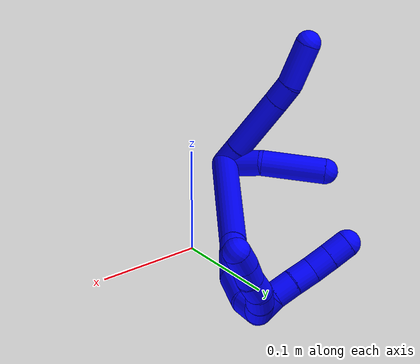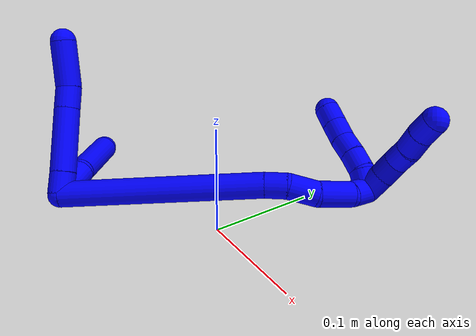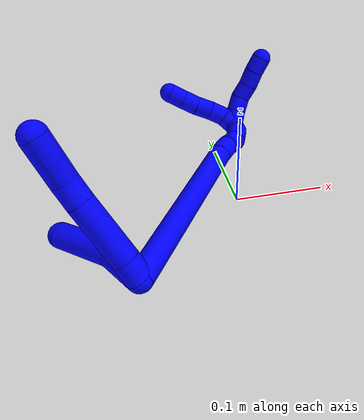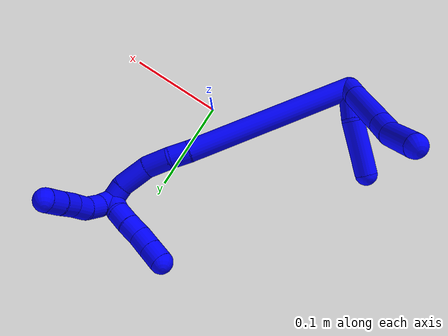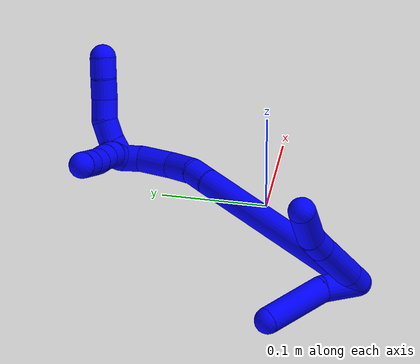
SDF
<sdf version="1.7">
 <world name="default">
  <model name="photoneo_s_sensor">
   <static>1</static>
   <pose>0 0 2 1.57079 1.57079 3.14159</pose>
   <link name="link">
    <inertial><mass>0.1</mass></inertial>
    <sensor name="sensor" type="depth">
     <update_rate>30</update_rate>
     <camera>
      <horizontal_fov>1.22</horizontal_fov>
      <image><width>1920</width><height>1200</height><format>B8G8R8</format></image>
      <clip><near>0.1</near><far>4</far></clip>
      <depth_camera><output>points</output></depth_camera>
     </camera>
     <plugin name="camera_plugin" filename="libgazebo_ros_depth_camera.so">
      <baseline>0.2</baseline>
      <alwaysOn>1</alwaysOn>
      <updateRate>0.0</updateRate>
      <cameraName>camera_ir</cameraName>
      <imageTopicName>/camera/color/image_raw</imageTopicName>
      <cameraInfoTopicName>/camera/color/camera_info</cameraInfoTopicName>
      <depthImageTopicName>/camera/depth/image_raw</depthImageTopicName>
      <depthImageCameraInfoTopicName>/camera/depth/camera_info</depthImageCameraInfoTopicName>
      <pointCloudTopicName>/camera/depth/points</pointCloudTopicName>
      <frameName>fr_optical</frameName>
      <pointCloudCutoff>0.1</pointCloudCutoff>
      <pointCloudCutoffMax>2.0</pointCloudCutoffMax>
      <distortionK1>0</distortionK1>
      <distortionK2>0</distortionK2>
      <distortionK3>0</distortionK3>
      <distortionT1>0</distortionT1>
      <distortionT2>0</distortionT2>
      <CxPrime>0</CxPrime>
      <Cx>0</Cx>
      <Cy>0</Cy>
      <focalLength>0</focalLength>
      <hackBaseline>0</hackBaseline>
     </plugin>
    </sensor>
   </link>
  </model>
  <model name="bin">
   <static>1</static>
   <link name="bottom">
    <collision name="collision-bottom">
     <pose>0 0 -0.01 0 -0 0</pose>
     <geometry><box><size>0.8 0.6 0.02</size></box></geometry>
     <surface>
      <friction><ode><mu>100</mu><mu2>100</mu2></ode></friction>
      <contact><collide_bitmask>65535</collide_bitmask></contact>
     </surface>
    </collision>
   </link>
   <link name="west_wall">
    <collision name="collision-west_wall">
     <pose>-0.41 0 0.1 0 -0 0</pose>
     <geometry><box><size>0.02 0.6 0.2</size></box></geometry>
     <surface>
      <friction><ode><mu>100</mu><mu2>100</mu2></ode></friction>
      <contact><collide_bitmask>65535</collide_bitmask></contact>
     </surface>
    </collision>
   </link>
   <link name="east_wall">
    <collision name="collision-east_wall">
     <pose>0.41 0 0.1 0 -0 0</pose>
     <geometry><box><size>0.02 0.6 0.2</size></box></geometry>
     <surface>
      <friction><ode><mu>100</mu><mu2>100</mu2></ode></friction>
      <contact><collide_bitmask>65535</collide_bitmask></contact>
     </surface>
    </collision>
   </link>
   <link name="south_wall">
    <collision name="collision-south_wall">
     <pose>0 -0.31 0.1 0 -0 0</pose>
     <geometry><box><size>0.8 0.02 0.2</size></box></geometry>
     <surface>
      <friction><ode><mu>100</mu><mu2>100</mu2></ode></friction>
      <contact><collide_bitmask>65535</collide_bitmask></contact>
     </surface>
    </collision>
   </link>
   <link name="north_wall">
    <collision name="collision-north_wall">
     <pose>0 0.31 0.1 0 -0 0</pose>
     <geometry><box><size>0.8 0.02 0.2</size></box></geometry>
     <surface>
      <friction><ode><mu>100</mu><mu2>100</mu2></ode></friction>
      <contact><collide_bitmask>65535</collide_bitmask></contact>
     </surface>
    </collision>
   </link>
  </model>
  <model name="1">
   <static>0</static>
   <link name="1">
    <collision name="collision-cylinder-e_1_2_8">
     <pose>0.00047 -0.00067 0.010493 0.063764 0.044712 0.001426</pose>
     <geometry><cylinder><radius>0.0125</radius><length>0.021049</length></cylinder></geometry>
     <surface>
      <friction><ode><mu>1.16</mu><mu2>1.16</mu2><slip1>0</slip1><slip2>0</slip2></ode></friction>
      <contact><ode><kp>1e+06</kp><kd>1</kd><max_vel>0</max_vel><min_depth>0.001</min_depth></ode></contact>
     </surface>
    </collision>
    <visual name="visual-cylinder-e_1_2_8">
     <pose>0.00047 -0.00067 0.010493 0.063764 0.044712 0.001426</pose>
     <geometry><cylinder><radius>0.0125</radius><length>0.021049</length></cylinder></geometry>
     <material><ambient>0 0 1 1</ambient></material>
    </visual>
    <collision name="collision-cylinder-e_2_8_9">
     <pose>0.001425 -0.004283 0.051837 0.095112 0.015618 0.000743</pose>
     <geometry><cylinder><radius>0.0125</radius><length>0.061991</length></cylinder></geometry>
     <surface>
      <friction><ode><mu>1.16</mu><mu2>1.16</mu2><slip1>0</slip1><slip2>0</slip2></ode></friction>
      <contact><ode><kp>1e+06</kp><kd>1</kd><max_vel>0</max_vel><min_depth>0.001</min_depth></ode></contact>
     </surface>
    </collision>
    <visual name="visual-cylinder-e_2_8_9">
     <pose>0.001425 -0.004283 0.051837 0.095112 0.015618 0.000743</pose>
     <geometry><cylinder><radius>0.0125</radius><length>0.061991</length></cylinder></geometry>
     <material><ambient>0 0 1 1</ambient></material>
    </visual>
    <collision name="collision-cylinder-e_3_9_10">
     <pose>0.002473 -0.008212 0.093666 0.089525 0.051112 0.00229</pose>
     <geometry><cylinder><radius>0.0125</radius><length>0.022071</length></cylinder></geometry>
     <surface>
      <friction><ode><mu>1.16</mu><mu2>1.16</mu2><slip1>0</slip1><slip2>0</slip2></ode></friction>
      <contact><ode><kp>1e+06</kp><kd>1</kd><max_vel>0</max_vel><min_depth>0.001</min_depth></ode></contact>
     </surface>
    </collision>
    <visual name="visual-cylinder-e_3_9_10">
     <pose>0.002473 -0.008212 0.093666 0.089525 0.051112 0.00229</pose>
     <geometry><cylinder><radius>0.0125</radius><length>0.022071</length></cylinder></geometry>
     <material><ambient>0 0 1 1</ambient></material>
    </visual>
    <collision name="collision-cylinder-e_4_10_6">
     <pose>0.007057 -0.015916 0.125677 0.309169 0.180088 0.028137</pose>
     <geometry><cylinder><radius>0.0125</radius><length>0.044888</length></cylinder></geometry>
     <surface>
      <friction><ode><mu>1.16</mu><mu2>1.16</mu2><slip1>0</slip1><slip2>0</slip2></ode></friction>
      <contact><ode><kp>1e+06</kp><kd>1</kd><max_vel>0</max_vel><min_depth>0.001</min_depth></ode></contact>
     </surface>
    </collision>
    <visual name="visual-cylinder-e_4_10_6">
     <pose>0.007057 -0.015916 0.125677 0.309169 0.180088 0.028137</pose>
     <geometry><cylinder><radius>0.0125</radius><length>0.044888</length></cylinder></geometry>
     <material><ambient>0 0 1 1</ambient></material>
    </visual>
    <collision name="collision-cylinder-e_1_2_11">
     <pose>-0.008007 0.009609 0.014091 -0.598494 -0.438928 0.137414</pose>
     <geometry><cylinder><radius>0.0125</radius><length>0.037683</length></cylinder></geometry>
     <surface>
      <friction><ode><mu>1.16</mu><mu2>1.16</mu2><slip1>0</slip1><slip2>0</slip2></ode></friction>
      <contact><ode><kp>1e+06</kp><kd>1</kd><max_vel>0</max_vel><min_depth>0.001</min_depth></ode></contact>
     </surface>
    </collision>
    <visual name="visual-cylinder-e_1_2_11">
     <pose>-0.008007 0.009609 0.014091 -0.598494 -0.438928 0.137414</pose>
     <geometry><cylinder><radius>0.0125</radius><length>0.037683</length></cylinder></geometry>
     <material><ambient>0 0 1 1</ambient></material>
    </visual>
    <collision name="collision-cylinder-e_2_11_5">
     <pose>-0.037212 0.033475 0.046021 -0.674278 -0.748207 0.273505</pose>
     <geometry><cylinder><radius>0.0125</radius><length>0.062317</length></cylinder></geometry>
     <surface>
      <friction><ode><mu>1.16</mu><mu2>1.16</mu2><slip1>0</slip1><slip2>0</slip2></ode></friction>
      <contact><ode><kp>1e+06</kp><kd>1</kd><max_vel>0</max_vel><min_depth>0.001</min_depth></ode></contact>
     </surface>
    </collision>
    <visual name="visual-cylinder-e_2_11_5">
     <pose>-0.037212 0.033475 0.046021 -0.674278 -0.748207 0.273505</pose>
     <geometry><cylinder><radius>0.0125</radius><length>0.062317</length></cylinder></geometry>
     <material><ambient>0 0 1 1</ambient></material>
    </visual>
    <collision name="collision-cylinder-e_1_2_12">
     <pose>0.0486 0.082933 0.012314 -1.42339 0.525328 -0.455747</pose>
     <geometry><cylinder><radius>0.0125</radius><length>0.193818</length></cylinder></geometry>
     <surface>
      <friction><ode><mu>1.16</mu><mu2>1.16</mu2><slip1>0</slip1><slip2>0</slip2></ode></friction>
      <contact><ode><kp>1e+06</kp><kd>1</kd><max_vel>0</max_vel><min_depth>0.001</min_depth></ode></contact>
     </surface>
    </collision>
    <visual name="visual-cylinder-e_1_2_12">
     <pose>0.0486 0.082933 0.012314 -1.42339 0.525328 -0.455747</pose>
     <geometry><cylinder><radius>0.0125</radius><length>0.193818</length></cylinder></geometry>
     <material><ambient>0 0 1 1</ambient></material>
    </visual>
    <collision name="collision-cylinder-e_2_12_13">
     <pose>0.102754 0.175145 0.02505 -1.52529 0.538916 -0.516005</pose>
     <geometry><cylinder><radius>0.0125</radius><length>0.021647</length></cylinder></geometry>
     <surface>
      <friction><ode><mu>1.16</mu><mu2>1.16</mu2><slip1>0</slip1><slip2>0</slip2></ode></friction>
      <contact><ode><kp>1e+06</kp><kd>1</kd><max_vel>0</max_vel><min_depth>0.001</min_depth></ode></contact>
     </surface>
    </collision>
    <visual name="visual-cylinder-e_2_12_13">
     <pose>0.102754 0.175145 0.02505 -1.52529 0.538916 -0.516005</pose>
     <geometry><cylinder><radius>0.0125</radius><length>0.021647</length></cylinder></geometry>
     <material><ambient>0 0 1 1</ambient></material>
    </visual>
    <collision name="collision-cylinder-e_3_13_14">
     <pose>0.112834 0.198164 0.023356 -1.72365 0.314712 -0.365831</pose>
     <geometry><cylinder><radius>0.0125</radius><length>0.029239</length></cylinder></geometry>
     <surface>
      <friction><ode><mu>1.16</mu><mu2>1.16</mu2><slip1>0</slip1><slip2>0</slip2></ode></friction>
      <contact><ode><kp>1e+06</kp><kd>1</kd><max_vel>0</max_vel><min_depth>0.001</min_depth></ode></contact>
     </surface>
    </collision>
    <visual name="visual-cylinder-e_3_13_14">
     <pose>0.112834 0.198164 0.023356 -1.72365 0.314712 -0.365831</pose>
     <geometry><cylinder><radius>0.0125</radius><length>0.029239</length></cylinder></geometry>
     <material><ambient>0 0 1 1</ambient></material>
    </visual>
    <collision name="collision-cylinder-e_4_14_15">
     <pose>0.120871 0.228836 0.023358 -1.44631 0.202968 -0.179288</pose>
     <geometry><cylinder><radius>0.0125</radius><length>0.034844</length></cylinder></geometry>
     <surface>
      <friction><ode><mu>1.16</mu><mu2>1.16</mu2><slip1>0</slip1><slip2>0</slip2></ode></friction>
      <contact><ode><kp>1e+06</kp><kd>1</kd><max_vel>0</max_vel><min_depth>0.001</min_depth></ode></contact>
     </surface>
    </collision>
    <visual name="visual-cylinder-e_4_14_15">
     <pose>0.120871 0.228836 0.023358 -1.44631 0.202968 -0.179288</pose>
     <geometry><cylinder><radius>0.0125</radius><length>0.034844</length></cylinder></geometry>
     <material><ambient>0 0 1 1</ambient></material>
    </visual>
    <collision name="collision-cylinder-e_5_15_1">
     <pose>0.12392 0.255355 0.029006 -1.2181 -0.045261 0.031572</pose>
     <geometry><cylinder><radius>0.0125</radius><length>0.020452</length></cylinder></geometry>
     <surface>
      <friction><ode><mu>1.16</mu><mu2>1.16</mu2><slip1>0</slip1><slip2>0</slip2></ode></friction>
      <contact><ode><kp>1e+06</kp><kd>1</kd><max_vel>0</max_vel><min_depth>0.001</min_depth></ode></contact>
     </surface>
    </collision>
    <visual name="visual-cylinder-e_5_15_1">
     <pose>0.12392 0.255355 0.029006 -1.2181 -0.045261 0.031572</pose>
     <geometry><cylinder><radius>0.0125</radius><length>0.020452</length></cylinder></geometry>
     <material><ambient>0 0 1 1</ambient></material>
    </visual>
    <collision name="collision-cylinder-e_1_1_16">
     <pose>0.130369 0.267822 0.039163 -0.409924 0.763035 -0.166408</pose>
     <geometry><cylinder><radius>0.0125</radius><length>0.02</length></cylinder></geometry>
     <surface>
      <friction><ode><mu>1.16</mu><mu2>1.16</mu2><slip1>0</slip1><slip2>0</slip2></ode></friction>
      <contact><ode><kp>1e+06</kp><kd>1</kd><max_vel>0</max_vel><min_depth>0.001</min_depth></ode></contact>
     </surface>
    </collision>
    <visual name="visual-cylinder-e_1_1_16">
     <pose>0.130369 0.267822 0.039163 -0.409924 0.763035 -0.166408</pose>
     <geometry><cylinder><radius>0.0125</radius><length>0.02</length></cylinder></geometry>
     <material><ambient>0 0 1 1</ambient></material>
    </visual>
    <collision name="collision-cylinder-e_2_16_17">
     <pose>0.145018 0.272129 0.051964 -0.22718 0.884741 -0.107971</pose>
     <geometry><cylinder><radius>0.0125</radius><length>0.02</length></cylinder></geometry>
     <surface>
      <friction><ode><mu>1.16</mu><mu2>1.16</mu2><slip1>0</slip1><slip2>0</slip2></ode></friction>
      <contact><ode><kp>1e+06</kp><kd>1</kd><max_vel>0</max_vel><min_depth>0.001</min_depth></ode></contact>
     </surface>
    </collision>
    <visual name="visual-cylinder-e_2_16_17">
     <pose>0.145018 0.272129 0.051964 -0.22718 0.884741 -0.107971</pose>
     <geometry><cylinder><radius>0.0125</radius><length>0.02</length></cylinder></geometry>
     <material><ambient>0 0 1 1</ambient></material>
    </visual>
    <collision name="collision-cylinder-e_3_17_18">
     <pose>0.161866 0.272839 0.062195 0.17479 1.14596 0.112939</pose>
     <geometry><cylinder><radius>0.0125</radius><length>0.02</length></cylinder></geometry>
     <surface>
      <friction><ode><mu>1.16</mu><mu2>1.16</mu2><slip1>0</slip1><slip2>0</slip2></ode></friction>
      <contact><ode><kp>1e+06</kp><kd>1</kd><max_vel>0</max_vel><min_depth>0.001</min_depth></ode></contact>
     </surface>
    </collision>
    <visual name="visual-cylinder-e_3_17_18">
     <pose>0.161866 0.272839 0.062195 0.17479 1.14596 0.112939</pose>
     <geometry><cylinder><radius>0.0125</radius><length>0.02</length></cylinder></geometry>
     <material><ambient>0 0 1 1</ambient></material>
    </visual>
    <collision name="collision-cylinder-e_4_18_19">
     <pose>0.179333 0.270951 0.071621 0.21488 0.989242 0.11621</pose>
     <geometry><cylinder><radius>0.0125</radius><length>0.02</length></cylinder></geometry>
     <surface>
      <friction><ode><mu>1.16</mu><mu2>1.16</mu2><slip1>0</slip1><slip2>0</slip2></ode></friction>
      <contact><ode><kp>1e+06</kp><kd>1</kd><max_vel>0</max_vel><min_depth>0.001</min_depth></ode></contact>
     </surface>
    </collision>
    <visual name="visual-cylinder-e_4_18_19">
     <pose>0.179333 0.270951 0.071621 0.21488 0.989242 0.11621</pose>
     <geometry><cylinder><radius>0.0125</radius><length>0.02</length></cylinder></geometry>
     <material><ambient>0 0 1 1</ambient></material>
    </visual>
    <collision name="collision-cylinder-e_5_19_4">
     <pose>0.196591 0.269099 0.081493 0.150063 1.09771 0.091876</pose>
     <geometry><cylinder><radius>0.0125</radius><length>0.02</length></cylinder></geometry>
     <surface>
      <friction><ode><mu>1.16</mu><mu2>1.16</mu2><slip1>0</slip1><slip2>0</slip2></ode></friction>
      <contact><ode><kp>1e+06</kp><kd>1</kd><max_vel>0</max_vel><min_depth>0.001</min_depth></ode></contact>
     </surface>
    </collision>
    <visual name="visual-cylinder-e_5_19_4">
     <pose>0.196591 0.269099 0.081493 0.150063 1.09771 0.091876</pose>
     <geometry><cylinder><radius>0.0125</radius><length>0.02</length></cylinder></geometry>
     <material><ambient>0 0 1 1</ambient></material>
    </visual>
    <collision name="collision-cylinder-e_1_1_20">
     <pose>0.121237 0.263014 0.042092 0.199026 -0.223901 -0.022448</pose>
     <geometry><cylinder><radius>0.0125</radius><length>0.02</length></cylinder></geometry>
     <surface>
      <friction><ode><mu>1.16</mu><mu2>1.16</mu2><slip1>0</slip1><slip2>0</slip2></ode></friction>
      <contact><ode><kp>1e+06</kp><kd>1</kd><max_vel>0</max_vel><min_depth>0.001</min_depth></ode></contact>
     </surface>
    </collision>
    <visual name="visual-cylinder-e_1_1_20">
     <pose>0.121237 0.263014 0.042092 0.199026 -0.223901 -0.022448</pose>
     <geometry><cylinder><radius>0.0125</radius><length>0.02</length></cylinder></geometry>
     <material><ambient>0 0 1 1</ambient></material>
    </visual>
    <collision name="collision-cylinder-e_2_20_21">
     <pose>0.114082 0.258961 0.060084 0.246843 -0.516158 -0.065467</pose>
     <geometry><cylinder><radius>0.0125</radius><length>0.02</length></cylinder></geometry>
     <surface>
      <friction><ode><mu>1.16</mu><mu2>1.16</mu2><slip1>0</slip1><slip2>0</slip2></ode></friction>
      <contact><ode><kp>1e+06</kp><kd>1</kd><max_vel>0</max_vel><min_depth>0.001</min_depth></ode></contact>
     </surface>
    </collision>
    <visual name="visual-cylinder-e_2_20_21">
     <pose>0.114082 0.258961 0.060084 0.246843 -0.516158 -0.065467</pose>
     <geometry><cylinder><radius>0.0125</radius><length>0.02</length></cylinder></geometry>
     <material><ambient>0 0 1 1</ambient></material>
    </visual>
    <collision name="collision-cylinder-e_3_21_22">
     <pose>0.103555 0.25452 0.076478 0.283044 -0.59332 -0.087048</pose>
     <geometry><cylinder><radius>0.0125</radius><length>0.02</length></cylinder></geometry>
     <surface>
      <friction><ode><mu>1.16</mu><mu2>1.16</mu2><slip1>0</slip1><slip2>0</slip2></ode></friction>
      <contact><ode><kp>1e+06</kp><kd>1</kd><max_vel>0</max_vel><min_depth>0.001</min_depth></ode></contact>
     </surface>
    </collision>
    <visual name="visual-cylinder-e_3_21_22">
     <pose>0.103555 0.25452 0.076478 0.283044 -0.59332 -0.087048</pose>
     <geometry><cylinder><radius>0.0125</radius><length>0.02</length></cylinder></geometry>
     <material><ambient>0 0 1 1</ambient></material>
    </visual>
    <collision name="collision-cylinder-e_4_22_23">
     <pose>0.093307 0.250122 0.09304 0.237594 -0.484448 -0.058964</pose>
     <geometry><cylinder><radius>0.0125</radius><length>0.02</length></cylinder></geometry>
     <surface>
      <friction><ode><mu>1.16</mu><mu2>1.16</mu2><slip1>0</slip1><slip2>0</slip2></ode></friction>
      <contact><ode><kp>1e+06</kp><kd>1</kd><max_vel>0</max_vel><min_depth>0.001</min_depth></ode></contact>
     </surface>
    </collision>
    <visual name="visual-cylinder-e_4_22_23">
     <pose>0.093307 0.250122 0.09304 0.237594 -0.484448 -0.058964</pose>
     <geometry><cylinder><radius>0.0125</radius><length>0.02</length></cylinder></geometry>
     <material><ambient>0 0 1 1</ambient></material>
    </visual>
    <collision name="collision-cylinder-e_5_23_3">
     <pose>0.084121 0.245843 0.110282 0.248888 -0.469918 -0.05987</pose>
     <geometry><cylinder><radius>0.0125</radius><length>0.02</length></cylinder></geometry>
     <surface>
      <friction><ode><mu>1.16</mu><mu2>1.16</mu2><slip1>0</slip1><slip2>0</slip2></ode></friction>
      <contact><ode><kp>1e+06</kp><kd>1</kd><max_vel>0</max_vel><min_depth>0.001</min_depth></ode></contact>
     </surface>
    </collision>
    <visual name="visual-cylinder-e_5_23_3">
     <pose>0.084121 0.245843 0.110282 0.248888 -0.469918 -0.05987</pose>
     <geometry><cylinder><radius>0.0125</radius><length>0.02</length></cylinder></geometry>
     <material><ambient>0 0 1 1</ambient></material>
    </visual>
    <collision name="collision-sphere-3">
     <pose>0.079593 0.243647 0.118923 0 -0 0</pose>
     <geometry><sphere><radius>0.0125</radius></sphere></geometry>
     <surface>
      <friction><ode><mu>1.16</mu><mu2>1.16</mu2><slip1>0</slip1><slip2>0</slip2></ode></friction>
      <contact><ode><kp>1e+06</kp><kd>1</kd><max_vel>0</max_vel><min_depth>0.001</min_depth></ode></contact>
     </surface>
    </collision>
    <visual name="visual-sphere-3">
     <pose>0.079593 0.243647 0.118923 0 -0 0</pose>
     <geometry><sphere><radius>0.0125</radius></sphere></geometry>
     <material><ambient>0 0 1 1</ambient></material>
    </visual>
    <collision name="collision-sphere-23">
     <pose>0.088649 0.248039 0.101641 0 -0 0</pose>
     <geometry><sphere><radius>0.0125</radius></sphere></geometry>
     <surface>
      <friction><ode><mu>1.16</mu><mu2>1.16</mu2><slip1>0</slip1><slip2>0</slip2></ode></friction>
      <contact><ode><kp>1e+06</kp><kd>1</kd><max_vel>0</max_vel><min_depth>0.001</min_depth></ode></contact>
     </surface>
    </collision>
    <visual name="visual-sphere-23">
     <pose>0.088649 0.248039 0.101641 0 -0 0</pose>
     <geometry><sphere><radius>0.0125</radius></sphere></geometry>
     <material><ambient>0 0 1 1</ambient></material>
    </visual>
    <collision name="collision-sphere-22">
     <pose>0.097964 0.252205 0.084439 0 -0 0</pose>
     <geometry><sphere><radius>0.0125</radius></sphere></geometry>
     <surface>
      <friction><ode><mu>1.16</mu><mu2>1.16</mu2><slip1>0</slip1><slip2>0</slip2></ode></friction>
      <contact><ode><kp>1e+06</kp><kd>1</kd><max_vel>0</max_vel><min_depth>0.001</min_depth></ode></contact>
     </surface>
    </collision>
    <visual name="visual-sphere-22">
     <pose>0.097964 0.252205 0.084439 0 -0 0</pose>
     <geometry><sphere><radius>0.0125</radius></sphere></geometry>
     <material><ambient>0 0 1 1</ambient></material>
    </visual>
    <collision name="collision-sphere-21">
     <pose>0.109146 0.256836 0.068517 0 -0 0</pose>
     <geometry><sphere><radius>0.0125</radius></sphere></geometry>
     <surface>
      <friction><ode><mu>1.16</mu><mu2>1.16</mu2><slip1>0</slip1><slip2>0</slip2></ode></friction>
      <contact><ode><kp>1e+06</kp><kd>1</kd><max_vel>0</max_vel><min_depth>0.001</min_depth></ode></contact>
     </surface>
    </collision>
    <visual name="visual-sphere-21">
     <pose>0.109146 0.256836 0.068517 0 -0 0</pose>
     <geometry><sphere><radius>0.0125</radius></sphere></geometry>
     <material><ambient>0 0 1 1</ambient></material>
    </visual>
    <collision name="collision-sphere-20">
     <pose>0.119017 0.261086 0.05165 0 -0 0</pose>
     <geometry><sphere><radius>0.0125</radius></sphere></geometry>
     <surface>
      <friction><ode><mu>1.16</mu><mu2>1.16</mu2><slip1>0</slip1><slip2>0</slip2></ode></friction>
      <contact><ode><kp>1e+06</kp><kd>1</kd><max_vel>0</max_vel><min_depth>0.001</min_depth></ode></contact>
     </surface>
    </collision>
    <visual name="visual-sphere-20">
     <pose>0.119017 0.261086 0.05165 0 -0 0</pose>
     <geometry><sphere><radius>0.0125</radius></sphere></geometry>
     <material><ambient>0 0 1 1</ambient></material>
    </visual>
    <collision name="collision-sphere-4">
     <pose>0.205493 0.268417 0.085998 0 -0 0</pose>
     <geometry><sphere><radius>0.0125</radius></sphere></geometry>
     <surface>
      <friction><ode><mu>1.16</mu><mu2>1.16</mu2><slip1>0</slip1><slip2>0</slip2></ode></friction>
      <contact><ode><kp>1e+06</kp><kd>1</kd><max_vel>0</max_vel><min_depth>0.001</min_depth></ode></contact>
     </surface>
    </collision>
    <visual name="visual-sphere-4">
     <pose>0.205493 0.268417 0.085998 0 -0 0</pose>
     <geometry><sphere><radius>0.0125</radius></sphere></geometry>
     <material><ambient>0 0 1 1</ambient></material>
    </visual>
    <collision name="collision-sphere-11">
     <pose>-0.016014 0.019218 0.028182 0 -0 0</pose>
     <geometry><sphere><radius>0.0125</radius></sphere></geometry>
     <surface>
      <friction><ode><mu>1.16</mu><mu2>1.16</mu2><slip1>0</slip1><slip2>0</slip2></ode></friction>
      <contact><ode><kp>1e+06</kp><kd>1</kd><max_vel>0</max_vel><min_depth>0.001</min_depth></ode></contact>
     </surface>
    </collision>
    <visual name="visual-sphere-11">
     <pose>-0.016014 0.019218 0.028182 0 -0 0</pose>
     <geometry><sphere><radius>0.0125</radius></sphere></geometry>
     <material><ambient>0 0 1 1</ambient></material>
    </visual>
    <collision name="collision-sphere-6">
     <pose>0.011077 -0.022634 0.146712 0 -0 0</pose>
     <geometry><sphere><radius>0.0125</radius></sphere></geometry>
     <surface>
      <friction><ode><mu>1.16</mu><mu2>1.16</mu2><slip1>0</slip1><slip2>0</slip2></ode></friction>
      <contact><ode><kp>1e+06</kp><kd>1</kd><max_vel>0</max_vel><min_depth>0.001</min_depth></ode></contact>
     </surface>
    </collision>
    <visual name="visual-sphere-6">
     <pose>0.011077 -0.022634 0.146712 0 -0 0</pose>
     <geometry><sphere><radius>0.0125</radius></sphere></geometry>
     <material><ambient>0 0 1 1</ambient></material>
    </visual>
    <collision name="collision-sphere-10">
     <pose>0.003037 -0.009197 0.104643 0 -0 0</pose>
     <geometry><sphere><radius>0.0125</radius></sphere></geometry>
     <surface>
      <friction><ode><mu>1.16</mu><mu2>1.16</mu2><slip1>0</slip1><slip2>0</slip2></ode></friction>
      <contact><ode><kp>1e+06</kp><kd>1</kd><max_vel>0</max_vel><min_depth>0.001</min_depth></ode></contact>
     </surface>
    </collision>
    <visual name="visual-sphere-10">
     <pose>0.003037 -0.009197 0.104643 0 -0 0</pose>
     <geometry><sphere><radius>0.0125</radius></sphere></geometry>
     <material><ambient>0 0 1 1</ambient></material>
    </visual>
    <collision name="collision-sphere-9">
     <pose>0.001909 -0.007226 0.082689 0 -0 0</pose>
     <geometry><sphere><radius>0.0125</radius></sphere></geometry>
     <surface>
      <friction><ode><mu>1.16</mu><mu2>1.16</mu2><slip1>0</slip1><slip2>0</slip2></ode></friction>
      <contact><ode><kp>1e+06</kp><kd>1</kd><max_vel>0</max_vel><min_depth>0.001</min_depth></ode></contact>
     </surface>
    </collision>
    <visual name="visual-sphere-9">
     <pose>0.001909 -0.007226 0.082689 0 -0 0</pose>
     <geometry><sphere><radius>0.0125</radius></sphere></geometry>
     <material><ambient>0 0 1 1</ambient></material>
    </visual>
    <collision name="collision-sphere-2">
     <geometry><sphere><radius>0.0125</radius></sphere></geometry>
     <surface>
      <friction><ode><mu>1.16</mu><mu2>1.16</mu2><slip1>0</slip1><slip2>0</slip2></ode></friction>
      <contact><ode><kp>1e+06</kp><kd>1</kd><max_vel>0</max_vel><min_depth>0.001</min_depth></ode></contact>
     </surface>
    </collision>
    <visual name="visual-sphere-2">
     <geometry><sphere><radius>0.0125</radius></sphere></geometry>
     <material><ambient>0 0 1 1</ambient></material>
    </visual>
    <collision name="collision-sphere-19">
     <pose>0.187689 0.26978 0.076988 0 -0 0</pose>
     <geometry><sphere><radius>0.0125</radius></sphere></geometry>
     <surface>
      <friction><ode><mu>1.16</mu><mu2>1.16</mu2><slip1>0</slip1><slip2>0</slip2></ode></friction>
      <contact><ode><kp>1e+06</kp><kd>1</kd><max_vel>0</max_vel><min_depth>0.001</min_depth></ode></contact>
     </surface>
    </collision>
    <visual name="visual-sphere-19">
     <pose>0.187689 0.26978 0.076988 0 -0 0</pose>
     <geometry><sphere><radius>0.0125</radius></sphere></geometry>
     <material><ambient>0 0 1 1</ambient></material>
    </visual>
    <collision name="collision-sphere-8">
     <pose>0.000941 -0.00134 0.020986 0 -0 0</pose>
     <geometry><sphere><radius>0.0125</radius></sphere></geometry>
     <surface>
      <friction><ode><mu>1.16</mu><mu2>1.16</mu2><slip1>0</slip1><slip2>0</slip2></ode></friction>
      <contact><ode><kp>1e+06</kp><kd>1</kd><max_vel>0</max_vel><min_depth>0.001</min_depth></ode></contact>
     </surface>
    </collision>
    <visual name="visual-sphere-8">
     <pose>0.000941 -0.00134 0.020986 0 -0 0</pose>
     <geometry><sphere><radius>0.0125</radius></sphere></geometry>
     <material><ambient>0 0 1 1</ambient></material>
    </visual>
    <collision name="collision-sphere-5">
     <pose>-0.05841 0.047733 0.06386 0 -0 0</pose>
     <geometry><sphere><radius>0.0125</radius></sphere></geometry>
     <surface>
      <friction><ode><mu>1.16</mu><mu2>1.16</mu2><slip1>0</slip1><slip2>0</slip2></ode></friction>
      <contact><ode><kp>1e+06</kp><kd>1</kd><max_vel>0</max_vel><min_depth>0.001</min_depth></ode></contact>
     </surface>
    </collision>
    <visual name="visual-sphere-5">
     <pose>-0.05841 0.047733 0.06386 0 -0 0</pose>
     <geometry><sphere><radius>0.0125</radius></sphere></geometry>
     <material><ambient>0 0 1 1</ambient></material>
    </visual>
    <collision name="collision-sphere-12">
     <pose>0.097199 0.165865 0.024627 0 -0 0</pose>
     <geometry><sphere><radius>0.0125</radius></sphere></geometry>
     <surface>
      <friction><ode><mu>1.16</mu><mu2>1.16</mu2><slip1>0</slip1><slip2>0</slip2></ode></friction>
      <contact><ode><kp>1e+06</kp><kd>1</kd><max_vel>0</max_vel><min_depth>0.001</min_depth></ode></contact>
     </surface>
    </collision>
    <visual name="visual-sphere-12">
     <pose>0.097199 0.165865 0.024627 0 -0 0</pose>
     <geometry><sphere><radius>0.0125</radius></sphere></geometry>
     <material><ambient>0 0 1 1</ambient></material>
    </visual>
    <collision name="collision-sphere-13">
     <pose>0.108309 0.184425 0.025473 0 -0 0</pose>
     <geometry><sphere><radius>0.0125</radius></sphere></geometry>
     <surface>
      <friction><ode><mu>1.16</mu><mu2>1.16</mu2><slip1>0</slip1><slip2>0</slip2></ode></friction>
      <contact><ode><kp>1e+06</kp><kd>1</kd><max_vel>0</max_vel><min_depth>0.001</min_depth></ode></contact>
     </surface>
    </collision>
    <visual name="visual-sphere-13">
     <pose>0.108309 0.184425 0.025473 0 -0 0</pose>
     <geometry><sphere><radius>0.0125</radius></sphere></geometry>
     <material><ambient>0 0 1 1</ambient></material>
    </visual>
    <collision name="collision-sphere-14">
     <pose>0.117359 0.211904 0.021239 0 -0 0</pose>
     <geometry><sphere><radius>0.0125</radius></sphere></geometry>
     <surface>
      <friction><ode><mu>1.16</mu><mu2>1.16</mu2><slip1>0</slip1><slip2>0</slip2></ode></friction>
      <contact><ode><kp>1e+06</kp><kd>1</kd><max_vel>0</max_vel><min_depth>0.001</min_depth></ode></contact>
     </surface>
    </collision>
    <visual name="visual-sphere-14">
     <pose>0.117359 0.211904 0.021239 0 -0 0</pose>
     <geometry><sphere><radius>0.0125</radius></sphere></geometry>
     <material><ambient>0 0 1 1</ambient></material>
    </visual>
    <collision name="collision-sphere-15">
     <pose>0.124383 0.245768 0.025477 0 -0 0</pose>
     <geometry><sphere><radius>0.0125</radius></sphere></geometry>
     <surface>
      <friction><ode><mu>1.16</mu><mu2>1.16</mu2><slip1>0</slip1><slip2>0</slip2></ode></friction>
      <contact><ode><kp>1e+06</kp><kd>1</kd><max_vel>0</max_vel><min_depth>0.001</min_depth></ode></contact>
     </surface>
    </collision>
    <visual name="visual-sphere-15">
     <pose>0.124383 0.245768 0.025477 0 -0 0</pose>
     <geometry><sphere><radius>0.0125</radius></sphere></geometry>
     <material><ambient>0 0 1 1</ambient></material>
    </visual>
    <collision name="collision-sphere-1">
     <pose>0.123458 0.264942 0.032534 0 -0 0</pose>
     <geometry><sphere><radius>0.0125</radius></sphere></geometry>
     <surface>
      <friction><ode><mu>1.16</mu><mu2>1.16</mu2><slip1>0</slip1><slip2>0</slip2></ode></friction>
      <contact><ode><kp>1e+06</kp><kd>1</kd><max_vel>0</max_vel><min_depth>0.001</min_depth></ode></contact>
     </surface>
    </collision>
    <visual name="visual-sphere-1">
     <pose>0.123458 0.264942 0.032534 0 -0 0</pose>
     <geometry><sphere><radius>0.0125</radius></sphere></geometry>
     <material><ambient>0 0 1 1</ambient></material>
    </visual>
    <collision name="collision-sphere-18">
     <pose>0.170977 0.272123 0.066254 0 -0 0</pose>
     <geometry><sphere><radius>0.0125</radius></sphere></geometry>
     <surface>
      <friction><ode><mu>1.16</mu><mu2>1.16</mu2><slip1>0</slip1><slip2>0</slip2></ode></friction>
      <contact><ode><kp>1e+06</kp><kd>1</kd><max_vel>0</max_vel><min_depth>0.001</min_depth></ode></contact>
     </surface>
    </collision>
    <visual name="visual-sphere-18">
     <pose>0.170977 0.272123 0.066254 0 -0 0</pose>
     <geometry><sphere><radius>0.0125</radius></sphere></geometry>
     <material><ambient>0 0 1 1</ambient></material>
    </visual>
    <collision name="collision-sphere-16">
     <pose>0.13728 0.270702 0.045792 0 -0 0</pose>
     <geometry><sphere><radius>0.0125</radius></sphere></geometry>
     <surface>
      <friction><ode><mu>1.16</mu><mu2>1.16</mu2><slip1>0</slip1><slip2>0</slip2></ode></friction>
      <contact><ode><kp>1e+06</kp><kd>1</kd><max_vel>0</max_vel><min_depth>0.001</min_depth></ode></contact>
     </surface>
    </collision>
    <visual name="visual-sphere-16">
     <pose>0.13728 0.270702 0.045792 0 -0 0</pose>
     <geometry><sphere><radius>0.0125</radius></sphere></geometry>
     <material><ambient>0 0 1 1</ambient></material>
    </visual>
    <collision name="collision-sphere-17">
     <pose>0.152755 0.273556 0.058136 0 -0 0</pose>
     <geometry><sphere><radius>0.0125</radius></sphere></geometry>
     <surface>
      <friction><ode><mu>1.16</mu><mu2>1.16</mu2><slip1>0</slip1><slip2>0</slip2></ode></friction>
      <contact><ode><kp>1e+06</kp><kd>1</kd><max_vel>0</max_vel><min_depth>0.001</min_depth></ode></contact>
     </surface>
    </collision>
    <visual name="visual-sphere-17">
     <pose>0.152755 0.273556 0.058136 0 -0 0</pose>
     <geometry><sphere><radius>0.0125</radius></sphere></geometry>
     <material><ambient>0 0 1 1</ambient></material>
    </visual>
    <inertial>
     <pose>0.061503 0.123512 0.044439 0 -0 0</pose>
     <mass>0.75</mass>
     <inertia><ixx>0.000331</ixx><ixy>0</ixy><ixz>0</ixz><iyy>8e-05</iyy><iyz>0</iyz><izz>-0.000811</izz></inertia>
    </inertial>
   </link>
   <pose>-0.116153 -0.103449 0.012116 -0.433654 -0.581291 -0.021367</pose>
  </model>
 </world>
</sdf>
